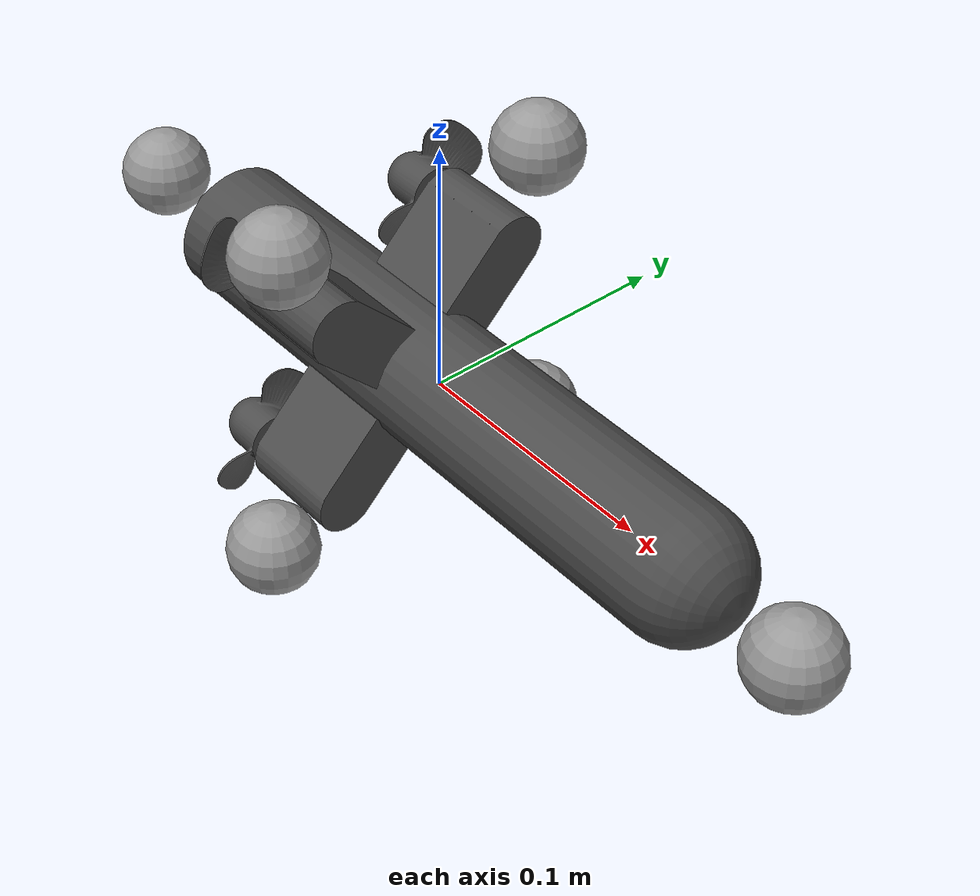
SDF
<?xml version="1.0" ?>
<sdf version='1.5'>
  <model name='hippocampus'>
    <link name='base_link'>
      <pose frame=''>0 0 0 0 -0 0</pose>
      <inertial>
        <pose frame=''>0 0 0 0 -0 0</pose>
        <!--
          These values are a compromise between the dry mass and added mass
          values used to correct for hydrodynamic effects.
        -->
        <mass>2</mass>
        <inertia>
          <ixx>0.2</ixx>
          <ixy>0</ixy>
          <ixz>0</ixz>
          <iyy>0.4</iyy>
          <iyz>0</iyz>
          <izz>0.4</izz>
        </inertia>
      </inertial>
      <self_collide>0</self_collide>
      <kinematic>0</kinematic>
      <velocity_decay/>
      <gravity>0</gravity>
      <visual name='visual'>
        <pose frame=''>0 0 0 0 0 0</pose>
        <geometry>
          <mesh>
            <!-- chose lightweight or full resolution model by uncommenting -->
            <uri>model://hippocampus/meshes/hippocampus_light.stl</uri>
          </mesh>
        </geometry>
        <material>
          <lighting>1</lighting>
          <script>
            <uri>__default__</uri>
            <name>Gazebo/DarkGrey</name>
          </script>
          <ambient>0.3 0.3 0.3 1</ambient>
          <diffuse>0.7 0.7 0.7 1</diffuse>
          <specular>0.01 0.01 0.01 1</specular>
          <emissive>0 0 0 1</emissive>
          <shader type='vertex'>
            <normal_map>__default__</normal_map>
          </shader>
        </material>
        <cast_shadows>1</cast_shadows>
        <transparency>0</transparency>
      </visual>

      <!-- Colored markers used for visual localization -->
      <visual name='marker0'>
        <pose frame=''>0.17407471187841123 0 0 0 -0 0</pose>
        <geometry>
          <sphere>
            <radius>0.0178</radius>
          </sphere>
        </geometry>
        <material>
          <lighting>1</lighting>
          <script>
            <uri>file://media/materials/scripts/gazebo.material</uri>
            <name>Gazebo/Grey</name>
          </script>
          <ambient>0.0 0.0 0.0 1</ambient>
          <diffuse>0.0 0.0 0.0 1</diffuse>
          <specular>0.0 0.0 0.0 1</specular>
          <emissive>1.0 0.0 0.0 1</emissive>
        </material>
        <cast_shadows>0</cast_shadows>
        <transparency>0</transparency>
      </visual>
      <visual name='marker1'>
        <pose frame=''>-0.0216398714295378 0.0633585139099389 0.0633585139099389 0 -0 0</pose>
        <geometry>
          <sphere>
            <radius>0.0178</radius>
          </sphere>
        </geometry>
        <material>
          <lighting>1</lighting>
          <script>
            <uri>file://media/materials/scripts/gazebo.material</uri>
            <name>Gazebo/Grey</name>
          </script>
          <ambient>0.0 0.0 0.0 1</ambient>
          <diffuse>0.0 0.0 0.0 1</diffuse>
          <specular>0.0 0.0 0.0 1</specular>
          <emissive>0.0 1.0 0.0 1</emissive>
        </material>
        <cast_shadows>0</cast_shadows>
        <transparency>0</transparency>
      </visual>
      <visual name='marker2'>
        <pose frame=''>-0.023104181630594828 -0.05080573489619825 0.06637902495167926 0 -0 0</pose>
        <geometry>
          <sphere>
            <radius>0.0178</radius>
          </sphere>
        </geometry>
        <material>
          <lighting>1</lighting>
          <script>
            <uri>file://media/materials/scripts/gazebo.material</uri>
            <name>Gazebo/Grey</name>
          </script>
          <ambient>0.0 0.0 0.0 1</ambient>
          <diffuse>0.0 0.0 0.0 1</diffuse>
          <specular>0.0 0.0 0.0 1</specular>
          <emissive>0.0 1.0 1.0 1</emissive>
        </material>
        <cast_shadows>0</cast_shadows>
        <transparency>0</transparency>
      </visual>
      <visual name='marker3'>
        <pose frame=''>-0.02345470699260671 -0.06001590779446261 -0.06214305414265644 0 -0 0</pose>
        <geometry>
          <sphere>
            <radius>0.0178</radius>
          </sphere>
        </geometry>
        <material>
          <lighting>1</lighting>
          <script>
            <uri>file://media/materials/scripts/gazebo.material</uri>
            <name>Gazebo/Grey</name>
          </script>
          <ambient>0.0 0.0 0.0 1</ambient>
          <diffuse>0.0 0.0 0.0 1</diffuse>
          <specular>0.0 0.0 0.0 1</specular>
          <emissive>1.0 1.0 0.0 1</emissive>
        </material>
        <cast_shadows>0</cast_shadows>
        <transparency>0</transparency>
      </visual>
      <visual name='marker4'>
        <pose frame=''>-0.025348340632893956 0.06890583681847762 -0.06318551603826297 0 -0 0</pose>
        <geometry>
          <sphere>
            <radius>0.0178</radius>
          </sphere>
        </geometry>
        <material>
          <lighting>1</lighting>
          <script>
            <uri>file://media/materials/scripts/gazebo.material</uri>
            <name>Gazebo/Grey</name>
          </script>
          <ambient>0.0 0.0 0.0 1</ambient>
          <diffuse>0.0 0.0 0.0 1</diffuse>
          <specular>0.0 0.0 0.0 1</specular>
          <emissive>0.0 0.0 1.0 1</emissive>
        </material>
        <cast_shadows>0</cast_shadows>
        <transparency>0</transparency>
      </visual>
      <visual name='marker5'>
        <pose frame=''>-0.17407471187841123 0 0 0 -0 0</pose>
        <geometry>
          <sphere>
            <radius>0.0178</radius>
          </sphere>
        </geometry>
        <material>
          <lighting>1</lighting>
          <script>
            <uri>file://media/materials/scripts/gazebo.material</uri>
            <name>Gazebo/Grey</name>
          </script>
          <ambient>0.0 0.0 0.0 1</ambient>
          <diffuse>0.0 0.0 0.0 1</diffuse>
          <specular>0.0 0.0 0.0 1</specular>
          <emissive>1.0 0.0 1.0 1</emissive>
        </material>
        <cast_shadows>0</cast_shadows>
        <transparency>0</transparency>
      </visual>

      <gravity>0</gravity>
      <collision name='base_link_collision'>
        <laser_retro>0</laser_retro>
        <max_contacts>10</max_contacts>
        <pose frame=''>0 0 0 0 1.570796 0</pose>
        <geometry>
          <cylinder>
            <radius>0.03</radius>
            <length>0.36</length>
          </cylinder>
        </geometry>
        <surface>
          <friction>
            <ode>
              <mu>1</mu>
              <mu2>1</mu2>
              <fdir1>0 0 0</fdir1>
              <slip1>0</slip1>
              <slip2>0</slip2>
            </ode>
          </friction>
          <bounce>
            <restitution_coefficient>0</restitution_coefficient>
            <threshold>1e+06</threshold>
          </bounce>
          <contact>
            <collide_without_contact>0</collide_without_contact>
            <collide_without_contact_bitmask>1</collide_without_contact_bitmask>
            <collide_bitmask>1</collide_bitmask>
            <ode>
              <soft_cfm>0</soft_cfm>
              <soft_erp>0.2</soft_erp>
              <kp>1e+13</kp>
              <kd>1</kd>
              <max_vel>0.01</max_vel>
              <min_depth>0</min_depth>
            </ode>
            <bullet>
              <split_impulse>1</split_impulse>
              <split_impulse_penetration_threshold>-0.01</split_impulse_penetration_threshold>
              <soft_cfm>0</soft_cfm>
              <soft_erp>0.2</soft_erp>
              <kp>1e+13</kp>
              <kd>1</kd>
            </bullet>
          </contact>
        </surface>
      </collision>
    </link>
    <link name='hippocampus/imu_link'>
      <pose frame=''>0 0 0 0 -0 0</pose>
      <inertial>
        <pose frame=''>0 0 0 0 -0 0</pose>
        <mass>0.015</mass>
        <inertia>
          <ixx>1e-05</ixx>
          <ixy>0</ixy>
          <ixz>0</ixz>
          <iyy>1e-05</iyy>
          <iyz>0</iyz>
          <izz>1e-05</izz>
        </inertia>
      </inertial>
      <self_collide>0</self_collide>
      <kinematic>0</kinematic>
      <gravity>0</gravity>
    </link>
    <link name='rotor_0'>
      <pose frame=''>-0.05 0.0388905 0.0388905 0 1.570796 0</pose>
      <self_collide>0</self_collide>
      <kinematic>0</kinematic>
      <velocity_decay/>
      <gravity>0</gravity>
      <visual name='rotor_0_visual'>
        <pose frame=''>0 0 0 0 -0 0</pose>
        <geometry>
          <mesh>
            <scale>1 1 1</scale>
            <uri>model://hippocampus/meshes/hippocampus_prop_cw.stl</uri>
          </mesh>
        </geometry>
        <material>
          <script>
            <name>Gazebo/DarkGrey</name>
            <uri>__default__</uri>
          </script>
          <ambient>0.3 0.3 0.3 1</ambient>
          <diffuse>0.3 0.3 0.3 1</diffuse>
          <specular>0.3 0.3 0.3 1</specular>
          <emissive>0 0 0 1</emissive>
          <shader type='vertex'>
            <normal_map>__default__</normal_map>
          </shader>
        </material>
        <cast_shadows>1</cast_shadows>
        <transparency>0</transparency>
      </visual>
      <collision name='rotor_0_collision'>
        <laser_retro>0</laser_retro>
        <max_contacts>10</max_contacts>
        <pose frame=''>0 0 0.02 0 -0 0</pose>
        <geometry>
          <cylinder>
            <radius>0.02</radius>
            <length>0.06</length>
          </cylinder>
        </geometry>
        <surface>
          <friction>
            <ode>
              <mu>1</mu>
              <mu2>1</mu2>
              <fdir1>0 0 0</fdir1>
              <slip1>0</slip1>
              <slip2>0</slip2>
            </ode>
          </friction>
          <bounce>
            <restitution_coefficient>0</restitution_coefficient>
            <threshold>1e+06</threshold>
          </bounce>
          <contact>
            <collide_without_contact>0</collide_without_contact>
            <collide_without_contact_bitmask>1</collide_without_contact_bitmask>
            <collide_bitmask>1</collide_bitmask>
            <ode>
              <soft_cfm>0</soft_cfm>
              <soft_erp>0.2</soft_erp>
              <kp>1e+13</kp>
              <kd>1</kd>
              <max_vel>0.01</max_vel>
              <min_depth>0</min_depth>
            </ode>
            <bullet>
              <split_impulse>1</split_impulse>
              <split_impulse_penetration_threshold>-0.01</split_impulse_penetration_threshold>
              <soft_cfm>0</soft_cfm>
              <soft_erp>0.2</soft_erp>
              <kp>1e+13</kp>
              <kd>1</kd>
            </bullet>
          </contact>
        </surface>
      </collision>
    </link>
    <link name='rotor_1'>
      <pose frame=''>-0.05 -0.0388905 0.0388905 0 1.570796 0</pose>
      <self_collide>0</self_collide>
      <kinematic>0</kinematic>
      <velocity_decay/>
      <gravity>0</gravity>
      <visual name='rotor_1_visual'>
        <pose frame=''>0 0 0 0 -0 0</pose>
        <geometry>
          <mesh>
            <scale>1 1 1</scale>
            <uri>model://hippocampus/meshes/hippocampus_prop_ccw.stl</uri>
          </mesh>
        </geometry>
        <material>
          <script>
            <name>Gazebo/DarkGrey</name>
            <uri>__default__</uri>
          </script>
          <ambient>0.175 0.175 0.175 1</ambient>
          <diffuse>0.175 0.175 0.175 1</diffuse>
          <specular>0.175 0.175 0.175 1</specular>
          <emissive>0 0 0 1</emissive>
          <shader type='vertex'>
            <normal_map>__default__</normal_map>
          </shader>
        </material>
        <cast_shadows>1</cast_shadows>
        <transparency>0</transparency>
      </visual>
      <collision name='rotor_1_collision'>
        <laser_retro>0</laser_retro>
        <max_contacts>10</max_contacts>
        <pose frame=''>0 0 0.02 0 -0 0</pose>
        <geometry>
          <cylinder>
            <radius>0.02</radius>
            <length>0.06</length>
          </cylinder>
        </geometry>
        <surface>
          <friction>
            <ode>
              <mu>1</mu>
              <mu2>1</mu2>
              <fdir1>0 0 0</fdir1>
              <slip1>0</slip1>
              <slip2>0</slip2>
            </ode>
          </friction>
          <bounce>
            <restitution_coefficient>0</restitution_coefficient>
            <threshold>1e+06</threshold>
          </bounce>
          <contact>
            <collide_without_contact>0</collide_without_contact>
            <collide_without_contact_bitmask>1</collide_without_contact_bitmask>
            <collide_bitmask>1</collide_bitmask>
            <ode>
              <soft_cfm>0</soft_cfm>
              <soft_erp>0.2</soft_erp>
              <kp>1e+13</kp>
              <kd>1</kd>
              <max_vel>0.01</max_vel>
              <min_depth>0</min_depth>
            </ode>
            <bullet>
              <split_impulse>1</split_impulse>
              <split_impulse_penetration_threshold>-0.01</split_impulse_penetration_threshold>
              <soft_cfm>0</soft_cfm>
              <soft_erp>0.2</soft_erp>
              <kp>1e+13</kp>
              <kd>1</kd>
            </bullet>
          </contact>
        </surface>
      </collision>
    </link>
    <link name='rotor_2'>
      <pose frame=''>-0.05 -0.0388905 -0.0388905 0 1.570796 0</pose>
      <self_collide>0</self_collide>
      <kinematic>0</kinematic>
      <velocity_decay/>
      <gravity>0</gravity>
      <visual name='rotor_2_visual'>
        <pose frame=''>0 0 0 0 -0 0</pose>
        <geometry>
          <mesh>
            <scale>1 1 1</scale>
            <uri>model://hippocampus/meshes/hippocampus_prop_cw.stl</uri>
          </mesh>
        </geometry>
        <material>
          <script>
            <name>Gazebo/DarkGrey</name>
            <uri>__default__</uri>
          </script>
          <ambient>0.175 0.175 0.175 1</ambient>
          <diffuse>0.175 0.175 0.175 1</diffuse>
          <specular>0.175 0.175 0.175 1</specular>
          <emissive>0 0 0 1</emissive>
          <shader type='vertex'>
            <normal_map>__default__</normal_map>
          </shader>
        </material>
        <cast_shadows>1</cast_shadows>
        <transparency>0</transparency>
      </visual>
      <collision name='rotor_2_collision'>
        <laser_retro>0</laser_retro>
        <max_contacts>10</max_contacts>
        <pose frame=''>0 0 0.02 0 -0 0</pose>
        <geometry>
          <cylinder>
            <radius>0.02</radius>
            <length>0.06</length>
          </cylinder>
        </geometry>
        <surface>
          <friction>
            <ode>
              <mu>1</mu>
              <mu2>1</mu2>
              <fdir1>0 0 0</fdir1>
              <slip1>0</slip1>
              <slip2>0</slip2>
            </ode>
          </friction>
          <bounce>
            <restitution_coefficient>0</restitution_coefficient>
            <threshold>1e+06</threshold>
          </bounce>
          <contact>
            <collide_without_contact>0</collide_without_contact>
            <collide_without_contact_bitmask>1</collide_without_contact_bitmask>
            <collide_bitmask>1</collide_bitmask>
            <ode>
              <soft_cfm>0</soft_cfm>
              <soft_erp>0.2</soft_erp>
              <kp>1e+13</kp>
              <kd>1</kd>
              <max_vel>0.01</max_vel>
              <min_depth>0</min_depth>
            </ode>
            <bullet>
              <split_impulse>1</split_impulse>
              <split_impulse_penetration_threshold>-0.01</split_impulse_penetration_threshold>
              <soft_cfm>0</soft_cfm>
              <soft_erp>0.2</soft_erp>
              <kp>1e+13</kp>
              <kd>1</kd>
            </bullet>
          </contact>
        </surface>
      </collision>
    </link>
    <link name='rotor_3'>
      <pose frame=''>-0.05 0.0388905 -0.0388905 0 1.570796 0</pose>
      <self_collide>0</self_collide>
      <kinematic>0</kinematic>
      <velocity_decay/>
      <gravity>0</gravity>
      <visual name='rotor_3_visual'>
        <pose frame=''>0 0 0 0 -0 0</pose>
        <geometry>
          <mesh>
            <scale>1 1 1</scale>
            <uri>model://hippocampus/meshes/hippocampus_prop_cw.stl</uri>
          </mesh>
        </geometry>
        <material>
          <script>
            <name>Gazebo/DarkGrey</name>
            <uri>__default__</uri>
          </script>
          <ambient>0.175 0.175 0.175 1</ambient>
          <diffuse>0.175 0.175 0.175 1</diffuse>
          <specular>0.175 0.175 0.175 1</specular>
          <emissive>0 0 0 1</emissive>
          <shader type='vertex'>
            <normal_map>__default__</normal_map>
          </shader>
        </material>
        <cast_shadows>1</cast_shadows>
        <transparency>0</transparency>
      </visual>
      <collision name='rotor_3_collision'>
        <laser_retro>0</laser_retro>
        <max_contacts>10</max_contacts>
        <pose frame=''>0 0 0.02 0 -0 0</pose>
        <geometry>
          <cylinder>
            <radius>0.02</radius>
            <length>0.06</length>
          </cylinder>
        </geometry>
        <surface>
          <friction>
            <ode>
              <mu>1</mu>
              <mu2>1</mu2>
              <fdir1>0 0 0</fdir1>
              <slip1>0</slip1>
              <slip2>0</slip2>
            </ode>
          </friction>
          <bounce>
            <restitution_coefficient>0</restitution_coefficient>
            <threshold>1e+06</threshold>
          </bounce>
          <contact>
            <collide_without_contact>0</collide_without_contact>
            <collide_without_contact_bitmask>1</collide_without_contact_bitmask>
            <collide_bitmask>1</collide_bitmask>
            <ode>
              <soft_cfm>0</soft_cfm>
              <soft_erp>0.2</soft_erp>
              <kp>1e+13</kp>
              <kd>1</kd>
              <max_vel>0.01</max_vel>
              <min_depth>0</min_depth>
            </ode>
            <bullet>
              <split_impulse>1</split_impulse>
              <split_impulse_penetration_threshold>-0.01</split_impulse_penetration_threshold>
              <soft_cfm>0</soft_cfm>
              <soft_erp>0.2</soft_erp>
              <kp>1e+13</kp>
              <kd>1</kd>
            </bullet>
          </contact>
        </surface>
      </collision>
    </link>

    <joint name='hippocampus/imu_joint' type='revolute'>
      <parent>base_link</parent>
      <child>hippocampus/imu_link</child>
      <axis>
        <xyz>1 0 0</xyz>
        <use_parent_model_frame>1</use_parent_model_frame>
        <limit>
          <lower>0</lower>
          <upper>0</upper>
          <effort>0</effort>
          <velocity>0</velocity>
        </limit>
        <dynamics>
          <spring_reference>0</spring_reference>
          <spring_stiffness>0</spring_stiffness>
          <damping>0</damping>
          <friction>0</friction>
        </dynamics>
      </axis>
      <physics>
        <ode>
          <limit>
            <cfm>0</cfm>
            <erp>0.2</erp>
          </limit>
          <suspension>
            <cfm>0</cfm>
            <erp>0.2</erp>
          </suspension>
        </ode>
      </physics>
    </joint>
    <joint name='rotor_0_joint' type='revolute'>
      <parent>base_link</parent>
      <child>rotor_0</child>
      <axis>
        <xyz>1 0 0</xyz>
        <use_parent_model_frame>1</use_parent_model_frame>
        <limit>
          <lower>-1e+16</lower>
          <upper>1e+16</upper>
          <effort>-1</effort>
          <velocity>-1</velocity>
        </limit>
        <dynamics>
          <spring_reference>0</spring_reference>
          <spring_stiffness>0</spring_stiffness>
          <damping>0</damping>
          <friction>0</friction>
        </dynamics>
      </axis>
      <physics>
        <ode>
          <limit>
            <cfm>0</cfm>
            <erp>0.2</erp>
          </limit>
          <suspension>
            <cfm>0</cfm>
            <erp>0.2</erp>
          </suspension>
        </ode>
      </physics>
    </joint>
    <joint name='rotor_1_joint' type='revolute'>
      <parent>base_link</parent>
      <child>rotor_1</child>
      <axis>
        <xyz>1 0 0</xyz>
        <use_parent_model_frame>1</use_parent_model_frame>
        <limit>
          <lower>-1e+16</lower>
          <upper>1e+16</upper>
          <effort>-1</effort>
          <velocity>-1</velocity>
        </limit>
        <dynamics>
          <spring_reference>0</spring_reference>
          <spring_stiffness>0</spring_stiffness>
          <damping>0</damping>
          <friction>0</friction>
        </dynamics>
      </axis>
      <physics>
        <ode>
          <limit>
            <cfm>0</cfm>
            <erp>0.2</erp>
          </limit>
          <suspension>
            <cfm>0</cfm>
            <erp>0.2</erp>
          </suspension>
        </ode>
      </physics>
    </joint>
    <joint name='rotor_2_joint' type='revolute'>
      <parent>base_link</parent>
      <child>rotor_2</child>
      <axis>
        <xyz>1 0 0</xyz>
        <use_parent_model_frame>1</use_parent_model_frame>
        <limit>
          <lower>-1e+16</lower>
          <upper>1e+16</upper>
          <effort>-1</effort>
          <velocity>-1</velocity>
        </limit>
        <dynamics>
          <spring_reference>0</spring_reference>
          <spring_stiffness>0</spring_stiffness>
          <damping>0</damping>
          <friction>0</friction>
        </dynamics>
      </axis>
      <physics>
        <ode>
          <limit>
            <cfm>0</cfm>
            <erp>0.2</erp>
          </limit>
          <suspension>
            <cfm>0</cfm>
            <erp>0.2</erp>
          </suspension>
        </ode>
      </physics>
    </joint>
    <joint name='rotor_3_joint' type='revolute'>
      <parent>base_link</parent>
      <child>rotor_3</child>
      <axis>
        <xyz>1 0 0</xyz>
        <use_parent_model_frame>1</use_parent_model_frame>
        <limit>
          <lower>-1e+16</lower>
          <upper>1e+16</upper>
          <effort>-1</effort>
          <velocity>-1</velocity>
        </limit>
        <dynamics>
          <spring_reference>0</spring_reference>
          <spring_stiffness>0</spring_stiffness>
          <damping>0</damping>
          <friction>0</friction>
        </dynamics>
      </axis>
      <physics>
        <ode>
          <limit>
            <cfm>0</cfm>
            <erp>0.2</erp>
          </limit>
          <suspension>
            <cfm>0</cfm>
            <erp>0.2</erp>
          </suspension>
        </ode>
      </physics>
    </joint>
    <static>0</static>
    <allow_auto_disable>1</allow_auto_disable>
    <plugin name='mavlink_interface' filename='librotors_gazebo_mavlink_interface.so'>
      <robotNamespace>hippocampus</robotNamespace>
      <imuSubTopic>/imu</imuSubTopic>
      <motorSpeedCommandPubTopic>/gazebo/command/motor_speed</motorSpeedCommandPubTopic>
      <inputScaling>1.0</inputScaling>
      <inputOffset>0.0</inputOffset>
      <zeroPositionArmed>0.0</zeroPositionArmed>
    </plugin>
    <plugin name='uuv_plugin' filename='librotors_gazebo_uuv_plugin.so'>
      <robotNamespace>hippocampus</robotNamespace>
      <commandSubTopic>/gazebo/command/motor_speed</commandSubTopic>
      <linkName>base_link</linkName>
      <motorForceConstant>10.0</motorForceConstant>
      <motorTorqueConstant>0.5</motorTorqueConstant>

      <!--Parameters from MATLAB simulation-->

      <!--Parameters for convenient dynamics-->
      <dampingLinear>100 10 10</dampingLinear>
      <dampingAngular>5 5 5</dampingAngular>
    </plugin>
    <plugin name='rotors_gazebo_imu_plugin' filename='librotors_gazebo_imu_plugin.so'>
      <robotNamespace>hippocampus</robotNamespace>
      <linkName>hippocampus/imu_link</linkName>
      <imuTopic>/imu</imuTopic>
      <gyroscopeNoiseDensity>0.0003394</gyroscopeNoiseDensity>
      <gyroscopeRandomWalk>3.8785e-05</gyroscopeRandomWalk>
      <gyroscopeBiasCorrelationTime>1000.0</gyroscopeBiasCorrelationTime>
      <gyroscopeTurnOnBiasSigma>0.0087</gyroscopeTurnOnBiasSigma>
      <accelerometerNoiseDensity>0.004</accelerometerNoiseDensity>
      <accelerometerRandomWalk>0.006</accelerometerRandomWalk>
      <accelerometerBiasCorrelationTime>300.0</accelerometerBiasCorrelationTime>
      <accelerometerTurnOnBiasSigma>0.196</accelerometerTurnOnBiasSigma>
    </plugin>

    <!-- The motor model plugins can be removed if you don't need the rotors to spin-->
    <plugin name='front_right_motor_model' filename='librotors_gazebo_motor_model.so'>
      <robotNamespace>hippocampus</robotNamespace>
      <jointName>rotor_0_joint</jointName>
      <linkName>rotor_0</linkName>
      <turningDirection>cw</turningDirection>
      <timeConstantUp>0.0125</timeConstantUp>
      <timeConstantDown>0.025</timeConstantDown>
      <maxRotVelocity>838</maxRotVelocity>
      <motorConstant>8.54858e-06</motorConstant>
      <momentConstant>0.016</momentConstant>
      <commandSubTopic>/gazebo/command/motor_speed</commandSubTopic>
      <motorNumber>0</motorNumber>
      <rotorDragCoefficient>8.06428e-05</rotorDragCoefficient>
      <rollingMomentCoefficient>1e-06</rollingMomentCoefficient>
      <motorSpeedPubTopic>motor_speed/0</motorSpeedPubTopic>
      <rotorVelocitySlowdownSim>0.05</rotorVelocitySlowdownSim>
      <applyForce>false</applyForce>
    </plugin>
    <plugin name='back_left_motor_model' filename='librotors_gazebo_motor_model.so'>
      <robotNamespace>hippocampus</robotNamespace>
      <jointName>rotor_1_joint</jointName>
      <linkName>rotor_1</linkName>
      <turningDirection>ccw</turningDirection>
      <timeConstantUp>0.0125</timeConstantUp>
      <timeConstantDown>0.025</timeConstantDown>
      <maxRotVelocity>838</maxRotVelocity>
      <motorConstant>8.54858e-06</motorConstant>
      <momentConstant>0.016</momentConstant>
      <commandSubTopic>/gazebo/command/motor_speed</commandSubTopic>
      <motorNumber>1</motorNumber>
      <rotorDragCoefficient>8.06428e-05</rotorDragCoefficient>
      <rollingMomentCoefficient>1e-06</rollingMomentCoefficient>
      <motorSpeedPubTopic>motor_speed/1</motorSpeedPubTopic>
      <rotorVelocitySlowdownSim>0.05</rotorVelocitySlowdownSim>
      <applyForce>false</applyForce>
    </plugin>
    <plugin name='front_left_motor_model' filename='librotors_gazebo_motor_model.so'>
      <robotNamespace>hippocampus</robotNamespace>
      <jointName>rotor_2_joint</jointName>
      <linkName>rotor_2</linkName>
      <turningDirection>cw</turningDirection>
      <timeConstantUp>0.0125</timeConstantUp>
      <timeConstantDown>0.025</timeConstantDown>
      <maxRotVelocity>838</maxRotVelocity>
      <motorConstant>8.54858e-06</motorConstant>
      <momentConstant>0.016</momentConstant>
      <commandSubTopic>/gazebo/command/motor_speed</commandSubTopic>
      <motorNumber>2</motorNumber>
      <rotorDragCoefficient>8.06428e-05</rotorDragCoefficient>
      <rollingMomentCoefficient>1e-06</rollingMomentCoefficient>
      <motorSpeedPubTopic>motor_speed/2</motorSpeedPubTopic>
      <rotorVelocitySlowdownSim>0.05</rotorVelocitySlowdownSim>
      <applyForce>false</applyForce>
    </plugin>
    <plugin name='back_right_motor_model' filename='librotors_gazebo_motor_model.so'>
      <robotNamespace>hippocampus</robotNamespace>
      <jointName>rotor_3_joint</jointName>
      <linkName>rotor_3</linkName>
      <turningDirection>ccw</turningDirection>
      <timeConstantUp>0.0125</timeConstantUp>
      <timeConstantDown>0.025</timeConstantDown>
      <maxRotVelocity>838</maxRotVelocity>
      <motorConstant>8.54858e-06</motorConstant>
      <momentConstant>0.016</momentConstant>
      <commandSubTopic>/gazebo/command/motor_speed</commandSubTopic>
      <motorNumber>3</motorNumber>
      <rotorDragCoefficient>8.06428e-05</rotorDragCoefficient>
      <rollingMomentCoefficient>1e-06</rollingMomentCoefficient>
      <motorSpeedPubTopic>motor_speed/3</motorSpeedPubTopic>
      <rotorVelocitySlowdownSim>0.05</rotorVelocitySlowdownSim>
      <applyForce>false</applyForce>
    </plugin>
  </model>
</sdf>
